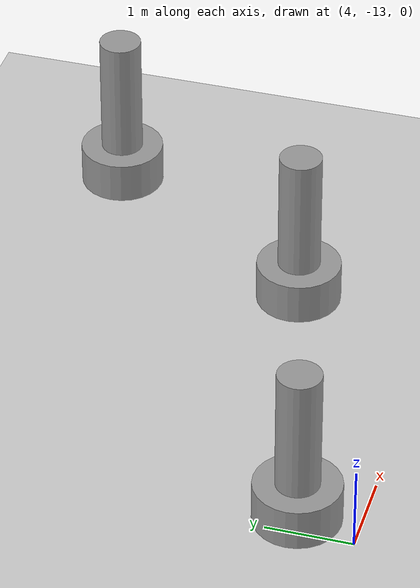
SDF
<sdf version="1.6">
 <world name="default">
  <model name="ground_plane">
   <static>1</static>
   <link name="link">
    <collision name="collision">
     <geometry><plane><normal>0 0 1</normal><size>100 100</size></plane></geometry>
     <surface>
      <contact><collide_bitmask>65535</collide_bitmask></contact>
      <friction><ode><mu>100</mu><mu2>50</mu2></ode></friction>
     </surface>
    </collision>
    <visual name="visual">
     <cast_shadows>0</cast_shadows>
     <geometry><plane><normal>0 0 1</normal><size>100 100</size></plane></geometry>
     <material>
      <script><uri>file://media/materials/scripts/gazebo.material</uri><name>Gazebo/Grey</name></script>
     </material>
    </visual>
   </link>
  </model>
  <model name="lidar_feature_0">
   <link name="link_0">
    <pose>0 0 -0.5 0 -0 0</pose>
    <inertial>
     <mass>1</mass>
     <inertia><ixx>0.145833</ixx><ixy>0</ixy><ixz>0</ixz><iyy>0.145833</iyy><iyz>0</iyz><izz>0.125</izz></inertia>
    </inertial>
    <visual name="visual">
     <geometry><cylinder><radius>0.5</radius><length>0.5</length></cylinder></geometry>
     <material>
      <lighting>1</lighting>
      <script><uri>file://media/materials/scripts/gazebo.material</uri><name>Gazebo/Grey</name></script>
      <shader type="pixel"><normal_map>__default__</normal_map></shader>
      <ambient>0.3 0.3 0.3 1</ambient>
      <diffuse>0.7 0.7 0.7 1</diffuse>
      <specular>0.01 0.01 0.01 1</specular>
      <emissive>0 0 0 1</emissive>
     </material>
    </visual>
    <collision name="collision">
     <geometry><cylinder><radius>0.5</radius><length>0.5</length></cylinder></geometry>
     <surface>
      <friction>
       <ode><mu>1</mu><mu2>1</mu2><fdir1>0 0 0</fdir1><slip1>0</slip1><slip2>0</slip2></ode>
       <torsional>
        <coefficient>1</coefficient>
        <patch_radius>0</patch_radius>
        <surface_radius>0</surface_radius>
        <use_patch_radius>1</use_patch_radius>
        <ode><slip>0</slip></ode>
       </torsional>
      </friction>
      <bounce><restitution_coefficient>0</restitution_coefficient><threshold>1e+06</threshold></bounce>
      <contact>
       <collide_without_contact>0</collide_without_contact>
       <collide_without_contact_bitmask>1</collide_without_contact_bitmask>
       <collide_bitmask>1</collide_bitmask>
       <ode>
        <soft_cfm>0</soft_cfm>
        <soft_erp>0.2</soft_erp>
        <kp>1e+13</kp>
        <kd>1</kd>
        <max_vel>0.01</max_vel>
        <min_depth>0</min_depth>
       </ode>
       <bullet>
        <split_impulse>1</split_impulse>
        <split_impulse_penetration_threshold>-0.01</split_impulse_penetration_threshold>
        <soft_cfm>0</soft_cfm>
        <soft_erp>0.2</soft_erp>
        <kp>1e+13</kp>
        <kd>1</kd>
       </bullet>
      </contact>
     </surface>
    </collision>
   </link>
   <link name="link_0_clone">
    <pose>0 0 0.5 0 -0 0</pose>
    <inertial>
     <mass>1</mass>
     <inertia><ixx>0.145833</ixx><ixy>0</ixy><ixz>0</ixz><iyy>0.145833</iyy><iyz>0</iyz><izz>0.125</izz></inertia>
    </inertial>
    <visual name="visual">
     <geometry><cylinder><radius>0.25</radius><length>1.5</length></cylinder></geometry>
     <material>
      <lighting>1</lighting>
      <script><uri>file://media/materials/scripts/gazebo.material</uri><name>Gazebo/Grey</name></script>
      <shader type="pixel"><normal_map>__default__</normal_map></shader>
      <ambient>0.3 0.3 0.3 1</ambient>
      <diffuse>0.7 0.7 0.7 1</diffuse>
      <specular>0.01 0.01 0.01 1</specular>
      <emissive>0 0 0 1</emissive>
     </material>
    </visual>
    <collision name="collision">
     <geometry><cylinder><radius>0.25</radius><length>1.5</length></cylinder></geometry>
     <surface>
      <friction>
       <ode><mu>1</mu><mu2>1</mu2><fdir1>0 0 0</fdir1><slip1>0</slip1><slip2>0</slip2></ode>
       <torsional>
        <coefficient>1</coefficient>
        <patch_radius>0</patch_radius>
        <surface_radius>0</surface_radius>
        <use_patch_radius>1</use_patch_radius>
        <ode><slip>0</slip></ode>
       </torsional>
      </friction>
      <bounce><restitution_coefficient>0</restitution_coefficient><threshold>1e+06</threshold></bounce>
      <contact>
       <collide_without_contact>0</collide_without_contact>
       <collide_without_contact_bitmask>1</collide_without_contact_bitmask>
       <collide_bitmask>1</collide_bitmask>
       <ode>
        <soft_cfm>0</soft_cfm>
        <soft_erp>0.2</soft_erp>
        <kp>1e+13</kp>
        <kd>1</kd>
        <max_vel>0.01</max_vel>
        <min_depth>0</min_depth>
       </ode>
       <bullet>
        <split_impulse>1</split_impulse>
        <split_impulse_penetration_threshold>-0.01</split_impulse_penetration_threshold>
        <soft_cfm>0</soft_cfm>
        <soft_erp>0.2</soft_erp>
        <kp>1e+13</kp>
        <kd>1</kd>
       </bullet>
      </contact>
     </surface>
    </collision>
   </link>
   <joint name="link_0_JOINT_0" type="fixed">
    <parent>link_0</parent>
    <child>link_0_clone</child>
    <physics>
     <ode><limit><cfm>0</cfm><erp>0.2</erp></limit><suspension><cfm>0</cfm><erp>0.2</erp></suspension></ode>
    </physics>
   </joint>
   <static>0</static>
   <pose>4.24804 -12.3006 0.75 0 -0 0</pose>
  </model>
  <model name="lidar_feature_1">
   <link name="link_0">
    <pose>0 0 -0.5 0 -0 0</pose>
    <inertial>
     <mass>1</mass>
     <inertia><ixx>0.145833</ixx><ixy>0</ixy><ixz>0</ixz><iyy>0.145833</iyy><iyz>0</iyz><izz>0.125</izz></inertia>
    </inertial>
    <visual name="visual">
     <geometry><cylinder><radius>0.5</radius><length>0.5</length></cylinder></geometry>
     <material>
      <lighting>1</lighting>
      <script><uri>file://media/materials/scripts/gazebo.material</uri><name>Gazebo/Grey</name></script>
      <shader type="pixel"><normal_map>__default__</normal_map></shader>
      <ambient>0.3 0.3 0.3 1</ambient>
      <diffuse>0.7 0.7 0.7 1</diffuse>
      <specular>0.01 0.01 0.01 1</specular>
      <emissive>0 0 0 1</emissive>
     </material>
    </visual>
    <collision name="collision">
     <geometry><cylinder><radius>0.5</radius><length>0.5</length></cylinder></geometry>
     <surface>
      <friction>
       <ode><mu>1</mu><mu2>1</mu2><fdir1>0 0 0</fdir1><slip1>0</slip1><slip2>0</slip2></ode>
       <torsional>
        <coefficient>1</coefficient>
        <patch_radius>0</patch_radius>
        <surface_radius>0</surface_radius>
        <use_patch_radius>1</use_patch_radius>
        <ode><slip>0</slip></ode>
       </torsional>
      </friction>
      <bounce><restitution_coefficient>0</restitution_coefficient><threshold>1e+06</threshold></bounce>
      <contact>
       <collide_without_contact>0</collide_without_contact>
       <collide_without_contact_bitmask>1</collide_without_contact_bitmask>
       <collide_bitmask>1</collide_bitmask>
       <ode>
        <soft_cfm>0</soft_cfm>
        <soft_erp>0.2</soft_erp>
        <kp>1e+13</kp>
        <kd>1</kd>
        <max_vel>0.01</max_vel>
        <min_depth>0</min_depth>
       </ode>
       <bullet>
        <split_impulse>1</split_impulse>
        <split_impulse_penetration_threshold>-0.01</split_impulse_penetration_threshold>
        <soft_cfm>0</soft_cfm>
        <soft_erp>0.2</soft_erp>
        <kp>1e+13</kp>
        <kd>1</kd>
       </bullet>
      </contact>
     </surface>
    </collision>
   </link>
   <link name="link_0_clone">
    <pose>0 0 0.5 0 -0 0</pose>
    <inertial>
     <mass>1</mass>
     <inertia><ixx>0.145833</ixx><ixy>0</ixy><ixz>0</ixz><iyy>0.145833</iyy><iyz>0</iyz><izz>0.125</izz></inertia>
    </inertial>
    <visual name="visual">
     <geometry><cylinder><radius>0.25</radius><length>1.5</length></cylinder></geometry>
     <material>
      <lighting>1</lighting>
      <script><uri>file://media/materials/scripts/gazebo.material</uri><name>Gazebo/Grey</name></script>
      <shader type="pixel"><normal_map>__default__</normal_map></shader>
      <ambient>0.3 0.3 0.3 1</ambient>
      <diffuse>0.7 0.7 0.7 1</diffuse>
      <specular>0.01 0.01 0.01 1</specular>
      <emissive>0 0 0 1</emissive>
     </material>
    </visual>
    <collision name="collision">
     <geometry><cylinder><radius>0.25</radius><length>1.5</length></cylinder></geometry>
     <surface>
      <friction>
       <ode><mu>1</mu><mu2>1</mu2><fdir1>0 0 0</fdir1><slip1>0</slip1><slip2>0</slip2></ode>
       <torsional>
        <coefficient>1</coefficient>
        <patch_radius>0</patch_radius>
        <surface_radius>0</surface_radius>
        <use_patch_radius>1</use_patch_radius>
        <ode><slip>0</slip></ode>
       </torsional>
      </friction>
      <bounce><restitution_coefficient>0</restitution_coefficient><threshold>1e+06</threshold></bounce>
      <contact>
       <collide_without_contact>0</collide_without_contact>
       <collide_without_contact_bitmask>1</collide_without_contact_bitmask>
       <collide_bitmask>1</collide_bitmask>
       <ode>
        <soft_cfm>0</soft_cfm>
        <soft_erp>0.2</soft_erp>
        <kp>1e+13</kp>
        <kd>1</kd>
        <max_vel>0.01</max_vel>
        <min_depth>0</min_depth>
       </ode>
       <bullet>
        <split_impulse>1</split_impulse>
        <split_impulse_penetration_threshold>-0.01</split_impulse_penetration_threshold>
        <soft_cfm>0</soft_cfm>
        <soft_erp>0.2</soft_erp>
        <kp>1e+13</kp>
        <kd>1</kd>
       </bullet>
      </contact>
     </surface>
    </collision>
   </link>
   <joint name="link_0_JOINT_0" type="fixed">
    <parent>link_0</parent>
    <child>link_0_clone</child>
    <physics>
     <ode><limit><cfm>0</cfm><erp>0.2</erp></limit><suspension><cfm>0</cfm><erp>0.2</erp></suspension></ode>
    </physics>
   </joint>
   <static>0</static>
   <pose>8.05739 -11.3042 0.75 0 -0 0</pose>
  </model>
  <model name="lidar_feature_2">
   <link name="link_0">
    <pose>0 0 -0.5 0 -0 0</pose>
    <inertial>
     <mass>1</mass>
     <inertia><ixx>0.145833</ixx><ixy>0</ixy><ixz>0</ixz><iyy>0.145833</iyy><iyz>0</iyz><izz>0.125</izz></inertia>
    </inertial>
    <visual name="visual">
     <geometry><cylinder><radius>0.5</radius><length>0.5</length></cylinder></geometry>
     <material>
      <lighting>1</lighting>
      <script><uri>file://media/materials/scripts/gazebo.material</uri><name>Gazebo/Grey</name></script>
      <shader type="pixel"><normal_map>__default__</normal_map></shader>
      <ambient>0.3 0.3 0.3 1</ambient>
      <diffuse>0.7 0.7 0.7 1</diffuse>
      <specular>0.01 0.01 0.01 1</specular>
      <emissive>0 0 0 1</emissive>
     </material>
    </visual>
    <collision name="collision">
     <geometry><cylinder><radius>0.5</radius><length>0.5</length></cylinder></geometry>
     <surface>
      <friction>
       <ode><mu>1</mu><mu2>1</mu2><fdir1>0 0 0</fdir1><slip1>0</slip1><slip2>0</slip2></ode>
       <torsional>
        <coefficient>1</coefficient>
        <patch_radius>0</patch_radius>
        <surface_radius>0</surface_radius>
        <use_patch_radius>1</use_patch_radius>
        <ode><slip>0</slip></ode>
       </torsional>
      </friction>
      <bounce><restitution_coefficient>0</restitution_coefficient><threshold>1e+06</threshold></bounce>
      <contact>
       <collide_without_contact>0</collide_without_contact>
       <collide_without_contact_bitmask>1</collide_without_contact_bitmask>
       <collide_bitmask>1</collide_bitmask>
       <ode>
        <soft_cfm>0</soft_cfm>
        <soft_erp>0.2</soft_erp>
        <kp>1e+13</kp>
        <kd>1</kd>
        <max_vel>0.01</max_vel>
        <min_depth>0</min_depth>
       </ode>
       <bullet>
        <split_impulse>1</split_impulse>
        <split_impulse_penetration_threshold>-0.01</split_impulse_penetration_threshold>
        <soft_cfm>0</soft_cfm>
        <soft_erp>0.2</soft_erp>
        <kp>1e+13</kp>
        <kd>1</kd>
       </bullet>
      </contact>
     </surface>
    </collision>
   </link>
   <link name="link_0_clone">
    <pose>0 0 0.5 0 -0 0</pose>
    <inertial>
     <mass>1</mass>
     <inertia><ixx>0.145833</ixx><ixy>0</ixy><ixz>0</ixz><iyy>0.145833</iyy><iyz>0</iyz><izz>0.125</izz></inertia>
    </inertial>
    <visual name="visual">
     <geometry><cylinder><radius>0.25</radius><length>1.5</length></cylinder></geometry>
     <material>
      <lighting>1</lighting>
      <script><uri>file://media/materials/scripts/gazebo.material</uri><name>Gazebo/Grey</name></script>
      <shader type="pixel"><normal_map>__default__</normal_map></shader>
      <ambient>0.3 0.3 0.3 1</ambient>
      <diffuse>0.7 0.7 0.7 1</diffuse>
      <specular>0.01 0.01 0.01 1</specular>
      <emissive>0 0 0 1</emissive>
     </material>
    </visual>
    <collision name="collision">
     <geometry><cylinder><radius>0.25</radius><length>1.5</length></cylinder></geometry>
     <surface>
      <friction>
       <ode><mu>1</mu><mu2>1</mu2><fdir1>0 0 0</fdir1><slip1>0</slip1><slip2>0</slip2></ode>
       <torsional>
        <coefficient>1</coefficient>
        <patch_radius>0</patch_radius>
        <surface_radius>0</surface_radius>
        <use_patch_radius>1</use_patch_radius>
        <ode><slip>0</slip></ode>
       </torsional>
      </friction>
      <bounce><restitution_coefficient>0</restitution_coefficient><threshold>1e+06</threshold></bounce>
      <contact>
       <collide_without_contact>0</collide_without_contact>
       <collide_without_contact_bitmask>1</collide_without_contact_bitmask>
       <collide_bitmask>1</collide_bitmask>
       <ode>
        <soft_cfm>0</soft_cfm>
        <soft_erp>0.2</soft_erp>
        <kp>1e+13</kp>
        <kd>1</kd>
        <max_vel>0.01</max_vel>
        <min_depth>0</min_depth>
       </ode>
       <bullet>
        <split_impulse>1</split_impulse>
        <split_impulse_penetration_threshold>-0.01</split_impulse_penetration_threshold>
        <soft_cfm>0</soft_cfm>
        <soft_erp>0.2</soft_erp>
        <kp>1e+13</kp>
        <kd>1</kd>
       </bullet>
      </contact>
     </surface>
    </collision>
   </link>
   <joint name="link_0_JOINT_0" type="fixed">
    <parent>link_0</parent>
    <child>link_0_clone</child>
    <physics>
     <ode><limit><cfm>0</cfm><erp>0.2</erp></limit><suspension><cfm>0</cfm><erp>0.2</erp></suspension></ode>
    </physics>
   </joint>
   <static>0</static>
   <pose>9.79434 -8.5961 0.75 0 -0 0</pose>
  </model>
 </world>
</sdf>
